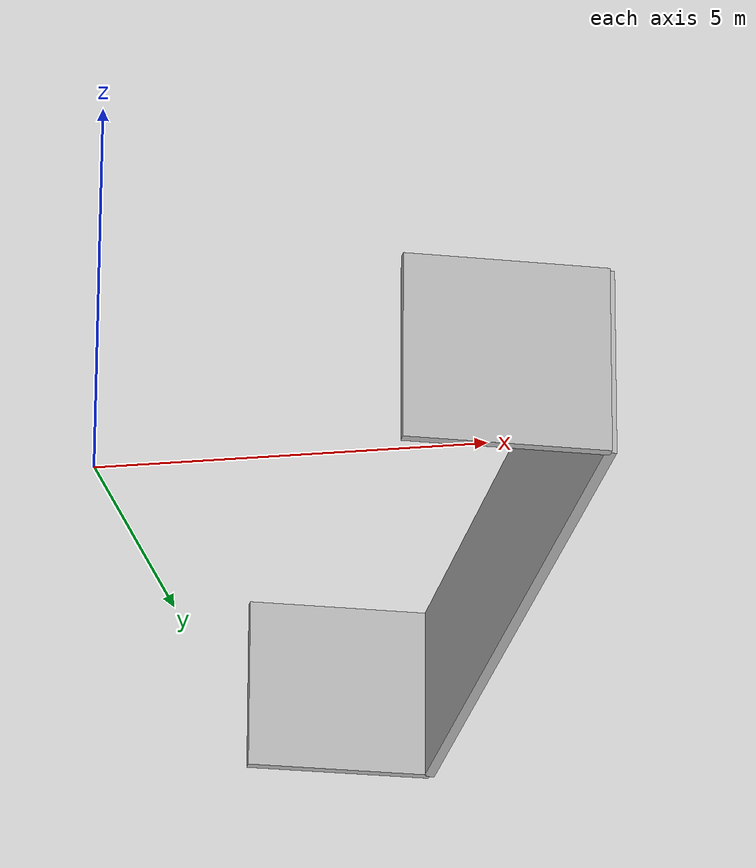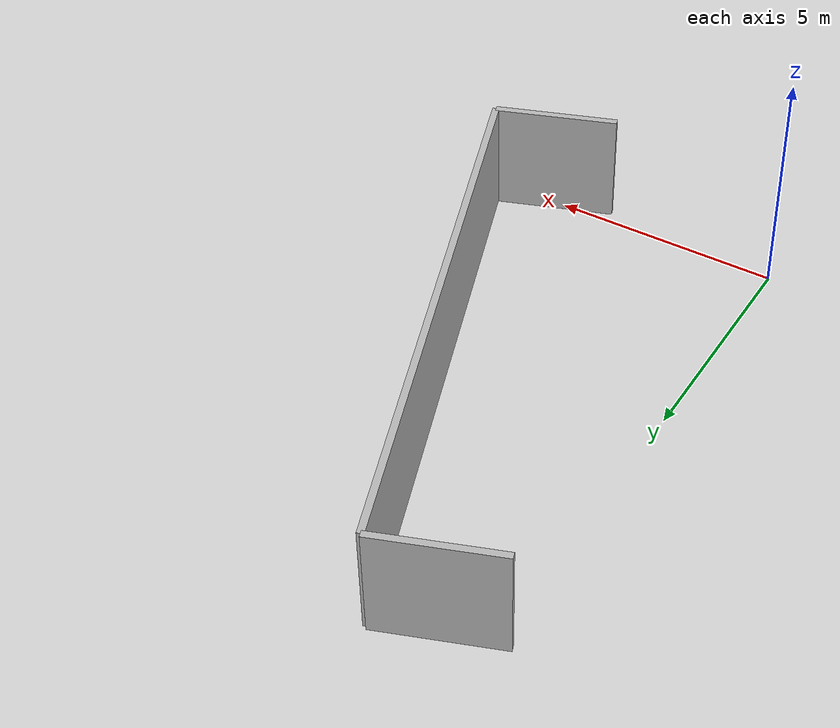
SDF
<?xml version="1.0" ?>
<sdf version="1.6">
  <model name="sps_4533">
    <pose frame="">0 0 0 0 -0 0</pose>
    <static>1</static>
    <self_collide>0</self_collide>
    <allow_auto_disable>0</allow_auto_disable>
    <link name="Wall74">
      <kinematic>0</kinematic>
      <gravity>1</gravity>
      <self_collide>0</self_collide>
      <collision name="collision">
        <geometry>
          <box>
            <size>12.4994 0.15 2.5</size>
          </box>
        </geometry>
        <pose frame="">0 0 0 0 -0 0</pose>
      </collision>
      <visual name="visual">
        <geometry>
          <box>
            <size>12.4994 0.15 2.5</size>
          </box>
        </geometry>
        <pose frame="">0 0 0 0 -0 0</pose>
        <cast_shadows>1</cast_shadows>
        <transparency>0.0</transparency>
      </visual>
      <pose frame="">4.36764 6.45839 1.25 0 -0 1.91501</pose>
    </link>
    <link name="Wall479">
      <kinematic>0</kinematic>
      <gravity>1</gravity>
      <self_collide>0</self_collide>
      <collision name="collision">
        <geometry>
          <box>
            <size>2.66038 0.15 2.5</size>
          </box>
        </geometry>
        <pose frame="">0 0 0 0 -0 0</pose>
      </collision>
      <visual name="visual">
        <geometry>
          <box>
            <size>2.66038 0.15 2.5</size>
          </box>
        </geometry>
        <pose frame="">0 0 0 0 -0 0</pose>
        <cast_shadows>1</cast_shadows>
        <transparency>0.0</transparency>
      </visual>
      <pose frame="">1.00643 11.8927 1.25 0 0 -2.79745</pose>
    </link>
    <link name="Wall480">
      <kinematic>0</kinematic>
      <gravity>1</gravity>
      <self_collide>0</self_collide>
      <collision name="collision">
        <geometry>
          <box>
            <size>2.65976 0.15 2.5</size>
          </box>
        </geometry>
        <pose frame="">0 0 0 0 -0 0</pose>
      </collision>
      <visual name="visual">
        <geometry>
          <box>
            <size>2.65976 0.15 2.5</size>
          </box>
        </geometry>
        <pose frame="">0 0 0 0 -0 0</pose>
        <cast_shadows>1</cast_shadows>
        <transparency>0.0</transparency>
      </visual>
      <pose frame="">5.22485 0.126296 1.25 0 -0 0.344372</pose>
    </link>
  </model>
</sdf>
